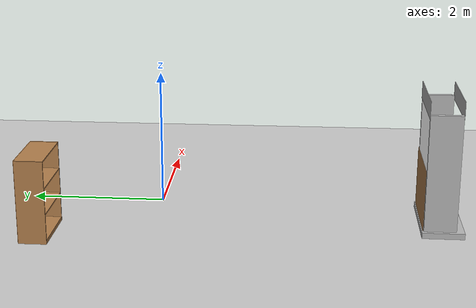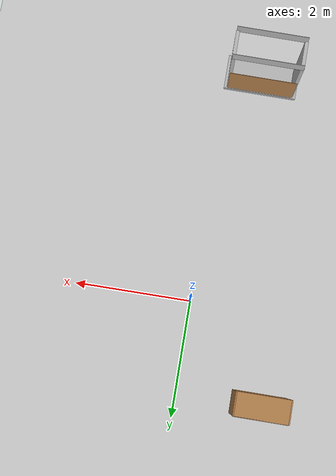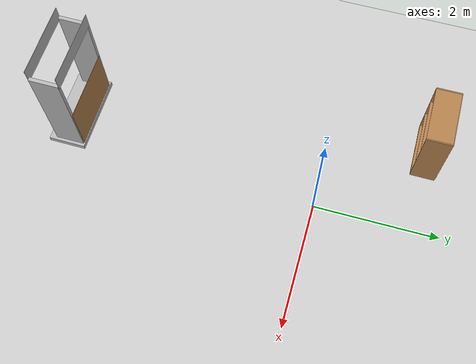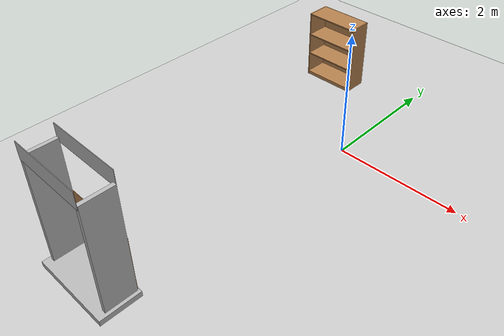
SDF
<sdf version="1.6">
 <world name="default">
  <light name="sun" type="directional">
   <pose>0 0 10 0 -0 0</pose>
   <diffuse>0.8 0.8 0.8 1</diffuse>
   <specular>0.2 0.2 0.2 1</specular>
   <attenuation>
    <range>1000</range>
    <constant>0.9</constant>
    <linear>0.01</linear>
    <quadratic>0.001</quadratic>
   </attenuation>
   <direction>-0.5 0.1 -0.9</direction>
  </light>
  <model name="ground_plane">
   <static>1</static>
   <link name="link">
    <collision name="collision">
     <geometry><plane><normal>0 0 1</normal><size>100 100</size></plane></geometry>
     <surface>
      <contact><collide_bitmask>65535</collide_bitmask></contact>
      <friction><ode><mu>100</mu><mu2>50</mu2></ode></friction>
     </surface>
    </collision>
    <visual name="visual">
     <cast_shadows>0</cast_shadows>
     <geometry><plane><normal>0 0 1</normal><size>100 100</size></plane></geometry>
     <material>
      <script><uri>file://media/materials/scripts/gazebo.material</uri><name>Gazebo/Grey</name></script>
     </material>
    </visual>
   </link>
  </model>
  <gravity>0 0 -9.8</gravity>
  <magnetic_field>6e-06 2.3e-05 -4.2e-05</magnetic_field>
  <atmosphere type="adiabatic"/>
  <physics name="default_physics" default="0" type="ode">
   <max_step_size>0.001</max_step_size>
   <real_time_factor>1</real_time_factor>
   <real_time_update_rate>1000</real_time_update_rate>
  </physics>
  <scene><ambient>0.4 0.4 0.4 1</ambient><background>0.7 0.7 0.7 1</background><shadows>1</shadows></scene>
  <audio><device>default</device></audio>
  <spherical_coordinates>
   <surface_model>EARTH_WGS84</surface_model>
   <latitude_deg>0</latitude_deg>
   <longitude_deg>0</longitude_deg>
   <elevation>0</elevation>
   <heading_deg>0</heading_deg>
  </spherical_coordinates>
  <model name="frc2016_drawbridge">
   <link name="base">
    <inertial>
     <mass>10</mass>
     <pose>0 0 1 0 -0 0</pose>
     <inertia><ixx>3.64907</ixx><ixy>0</ixy><ixz>0</ixz><iyy>4.67075</iyy><iyz>0</iyz><izz>1.66649</izz></inertia>
    </inertial>
    <visual name="platform">
     <pose>0 0 0.0425 0 -0 0</pose>
     <geometry><box><size>1.27 0.5969 0.085</size></box></geometry>
    </visual>
    <collision name="platform">
     <pose>0 0 0.0425 0 -0 0</pose>
     <geometry><box><size>1.27 0.5969 0.085</size></box></geometry>
    </collision>
    <visual name="right_wall">
     <pose>0.55879 0.04444 0.889 0 -0 0</pose>
     <geometry><box><size>0.05715 0.45698 1.77165</size></box></geometry>
    </visual>
    <collision name="right_wall">
     <pose>0.55879 0.04444 0.889 0 -0 0</pose>
     <geometry><box><size>0.05715 0.45698 1.77165</size></box></geometry>
    </collision>
    <visual name="left_wall">
     <pose>-0.55879 0.04444 0.889 0 -0 0</pose>
     <geometry><box><size>0.05715 0.45698 1.77165</size></box></geometry>
    </visual>
    <collision name="left_wall">
     <pose>-0.55879 0.04444 0.889 0 -0 0</pose>
     <geometry><box><size>0.05715 0.45698 1.77165</size></box></geometry>
    </collision>
    <visual name="front_upper_wall">
     <pose>0 0.27611 1.84286 0 -0 0</pose>
     <geometry><box><size>1.1557 0.006347 0.254</size></box></geometry>
    </visual>
    <collision name="front_upper_wall">
     <pose>0 0.27611 1.84286 0 -0 0</pose>
     <geometry><box><size>1.1557 0.006347 0.254</size></box></geometry>
    </collision>
    <visual name="back_upper_wall">
     <pose>0 -0.18722 1.84286 0 -0 0</pose>
     <geometry><box><size>1.1557 0.006347 0.254</size></box></geometry>
    </visual>
    <collision name="back_upper_wall">
     <pose>0 -0.18722 1.84286 0 -0 0</pose>
     <geometry><box><size>1.1557 0.006347 0.254</size></box></geometry>
    </collision>
   </link>
   <link name="bridge">
    <pose>0 0.28245 0.50577 0 -0 0</pose>
    <inertial>
     <mass>2</mass>
     <pose>0 -0.28245 -0.50577 0 -0 0</pose>
     <inertia>
      <ixx>0.139361</ixx>
      <ixy>0</ixy>
      <ixz>0</ixz>
      <iyy>0.357088</iyy>
      <iyz>0</iyz>
      <izz>0.217741</izz>
     </inertia>
    </inertial>
    <visual name="visual">
     <geometry><box><size>1.14298 0.006347 0.9144</size></box></geometry>
     <material><script><name>Gazebo/WoodFloor</name><uri>__default__</uri></script></material>
    </visual>
    <collision name="collision"><geometry><box><size>1.14298 0.006347 0.9144</size></box></geometry></collision>
   </link>
   <joint name="bridge_joint" type="revolute">
    <pose>0 0 -0.4172 0 -0 0</pose>
    <parent>base</parent>
    <child>bridge</child>
    <axis>
     <xyz>1 0 0</xyz>
     <limit><lower>-2</lower><upper>0</upper></limit>
     <use_parent_model_frame>0</use_parent_model_frame>
     <dynamics><spring_reference>0</spring_reference><spring_stiffness>0</spring_stiffness></dynamics>
    </axis>
   </joint>
   <pose>-0.62595 -4.12133 0 0 -1e-06 -0.005779</pose>
  </model>
  <model name="bookshelf">
   <static>1</static>
   <link name="link">
    <inertial><mass>1</mass></inertial>
    <collision name="back">
     <pose>0 0.005 0.6 0 -0 0</pose>
     <geometry><box><size>0.9 0.01 1.2</size></box></geometry>
    </collision>
    <visual name="visual1">
     <pose>0 0.005 0.6 0 -0 0</pose>
     <geometry><box><size>0.9 0.01 1.2</size></box></geometry>
     <material>
      <script><uri>file://media/materials/scripts/gazebo.material</uri><name>Gazebo/Wood</name></script>
     </material>
    </visual>
    <collision name="left_side">
     <pose>0.45 -0.195 0.6 0 -0 0</pose>
     <geometry><box><size>0.02 0.4 1.2</size></box></geometry>
    </collision>
    <visual name="visual2">
     <pose>0.45 -0.195 0.6 0 -0 0</pose>
     <geometry><box><size>0.02 0.4 1.2</size></box></geometry>
     <material>
      <script><uri>file://media/materials/scripts/gazebo.material</uri><name>Gazebo/Wood</name></script>
     </material>
    </visual>
    <collision name="right_side">
     <pose>-0.45 -0.195 0.6 0 -0 0</pose>
     <geometry><box><size>0.02 0.4 1.2</size></box></geometry>
    </collision>
    <visual name="visual3">
     <pose>-0.45 -0.195 0.6 0 -0 0</pose>
     <geometry><box><size>0.02 0.4 1.2</size></box></geometry>
     <material>
      <script><uri>file://media/materials/scripts/gazebo.material</uri><name>Gazebo/Wood</name></script>
     </material>
    </visual>
    <collision name="bottom">
     <pose>0 -0.195 0.03 0 -0 0</pose>
     <geometry><box><size>0.88 0.4 0.06</size></box></geometry>
    </collision>
    <visual name="visual4">
     <pose>0 -0.195 0.03 0 -0 0</pose>
     <geometry><box><size>0.88 0.4 0.06</size></box></geometry>
     <material>
      <script><uri>file://media/materials/scripts/gazebo.material</uri><name>Gazebo/Wood</name></script>
     </material>
    </visual>
    <collision name="top">
     <pose>0 -0.195 1.19 0 -0 0</pose>
     <geometry><box><size>0.88 0.4 0.02</size></box></geometry>
    </collision>
    <visual name="visual5">
     <pose>0 -0.195 1.19 0 -0 0</pose>
     <geometry><box><size>0.88 0.4 0.02</size></box></geometry>
     <material>
      <script><uri>file://media/materials/scripts/gazebo.material</uri><name>Gazebo/Wood</name></script>
     </material>
    </visual>
    <collision name="low_shelf">
     <pose>0 -0.195 0.43 0 -0 0</pose>
     <geometry><box><size>0.88 0.4 0.02</size></box></geometry>
    </collision>
    <visual name="visual6">
     <pose>0 -0.195 0.43 0 -0 0</pose>
     <geometry><box><size>0.88 0.4 0.02</size></box></geometry>
     <material>
      <script><uri>file://media/materials/scripts/gazebo.material</uri><name>Gazebo/Wood</name></script>
     </material>
    </visual>
    <collision name="high_shelf">
     <pose>0 -0.195 0.8 0 -0 0</pose>
     <geometry><box><size>0.88 0.4 0.02</size></box></geometry>
    </collision>
    <visual name="visual7">
     <pose>0 -0.195 0.8 0 -0 0</pose>
     <geometry><box><size>0.88 0.4 0.02</size></box></geometry>
     <material>
      <script><uri>file://media/materials/scripts/gazebo.material</uri><name>Gazebo/Wood</name></script>
     </material>
    </visual>
   </link>
   <pose>-1.41351 1.75737 0 0 -0 0</pose>
  </model>
 </world>
</sdf>
